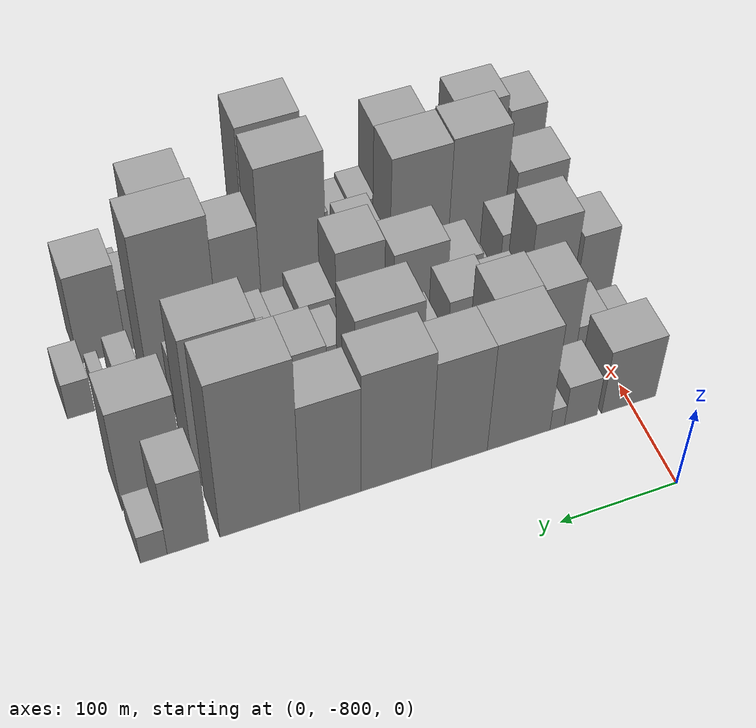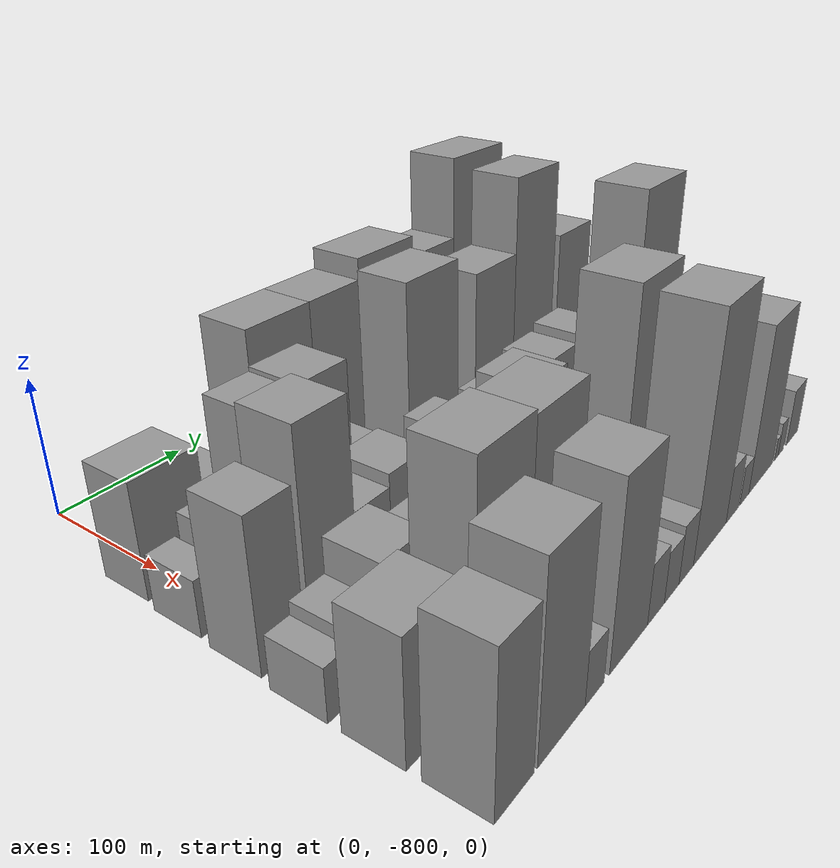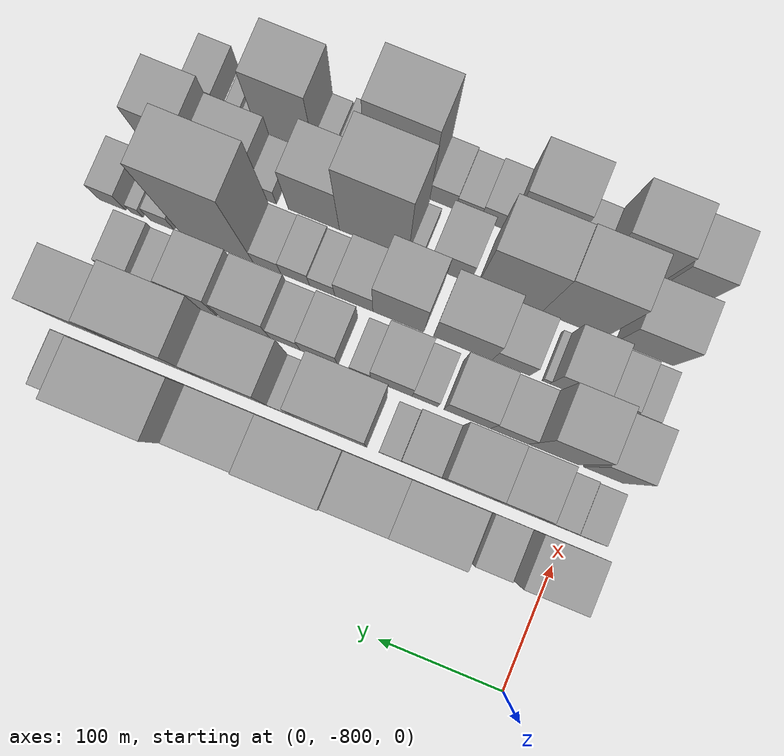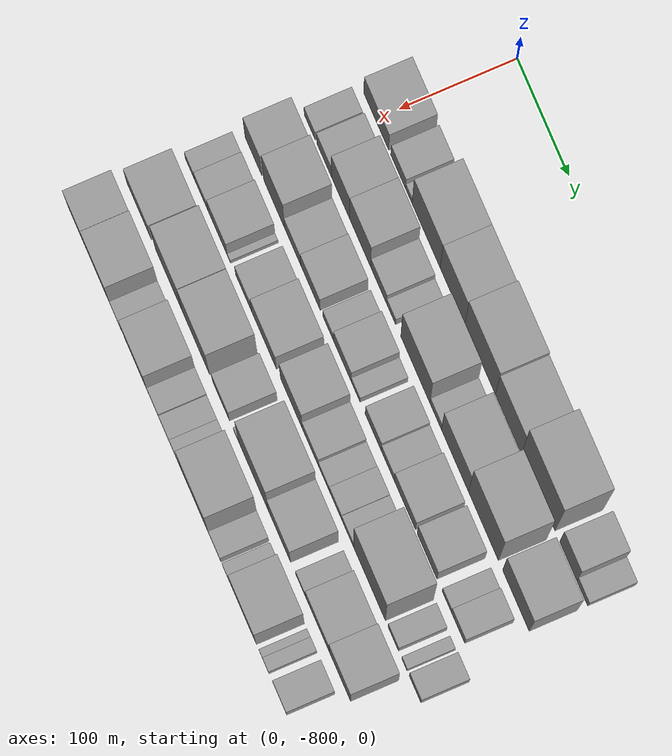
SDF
<sdf version="1.6">
 <world name="default">
  <model name="building_1">
   <static>1</static>
   <pose>100.0000 -797.8358 0 0.000000 0.000000 0.000000</pose>
   <link name="link">
    <pose>0 0 40.50 0 0 0</pose>
    <collision name="collision"><geometry><box><size>40.0000 48.3283 81.0000</size></box></geometry></collision>
    <visual name="visual">
     <cast_shadows>0</cast_shadows>
     <geometry><box><size>40.0000 48.3283 81.0000</size></box></geometry>
     <material>
      <script>
       <uri>model://grey_wall/materials/scripts</uri>
       <uri>model://grey_wall/materials/textures</uri>
       <name>vrc/grey_wall</name>
      </script>
     </material>
    </visual>
   </link>
  </model>
  <model name="building_2">
   <static>1</static>
   <pose>100.0000 -755.2595 0 0.000000 0.000000 0.000000</pose>
   <link name="link">
    <pose>0 0 25.50 0 0 0</pose>
    <collision name="collision"><geometry><box><size>40.0000 28.8243 51.0000</size></box></geometry></collision>
    <visual name="visual">
     <cast_shadows>0</cast_shadows>
     <geometry><box><size>40.0000 28.8243 51.0000</size></box></geometry>
     <material>
      <script>
       <uri>model://grey_wall/materials/scripts</uri>
       <uri>model://grey_wall/materials/textures</uri>
       <name>vrc/grey_wall</name>
      </script>
     </material>
    </visual>
   </link>
  </model>
  <model name="building_3">
   <static>1</static>
   <pose>100.0000 -734.4931 0 0.000000 0.000000 0.000000</pose>
   <link name="link">
    <pose>0 0 13.50 0 0 0</pose>
    <collision name="collision"><geometry><box><size>40.0000 12.7086 27.0000</size></box></geometry></collision>
    <visual name="visual">
     <cast_shadows>0</cast_shadows>
     <geometry><box><size>40.0000 12.7086 27.0000</size></box></geometry>
     <material>
      <script>
       <uri>model://grey_wall/materials/scripts</uri>
       <uri>model://grey_wall/materials/textures</uri>
       <name>vrc/grey_wall</name>
      </script>
     </material>
    </visual>
   </link>
  </model>
  <model name="building_4">
   <static>1</static>
   <pose>100.0000 -700.9512 0 0.000000 0.000000 0.000000</pose>
   <link name="link">
    <pose>0 0 69.00 0 0 0</pose>
    <collision name="collision"><geometry><box><size>40.0000 54.3752 138.0000</size></box></geometry></collision>
    <visual name="visual">
     <cast_shadows>0</cast_shadows>
     <geometry><box><size>40.0000 54.3752 138.0000</size></box></geometry>
     <material>
      <script>
       <uri>model://grey_wall/materials/scripts</uri>
       <uri>model://grey_wall/materials/textures</uri>
       <name>vrc/grey_wall</name>
      </script>
     </material>
    </visual>
   </link>
  </model>
  <model name="building_5">
   <static>1</static>
   <pose>100.0000 -649.9004 0 0.000000 0.000000 0.000000</pose>
   <link name="link">
    <pose>0 0 69.00 0 0 0</pose>
    <collision name="collision"><geometry><box><size>40.0000 47.7264 138.0000</size></box></geometry></collision>
    <visual name="visual">
     <cast_shadows>0</cast_shadows>
     <geometry><box><size>40.0000 47.7264 138.0000</size></box></geometry>
     <material>
      <script>
       <uri>model://grey_wall/materials/scripts</uri>
       <uri>model://grey_wall/materials/textures</uri>
       <name>vrc/grey_wall</name>
      </script>
     </material>
    </visual>
   </link>
  </model>
  <model name="building_6">
   <static>1</static>
   <pose>100.0000 -596.5173 0 0.000000 0.000000 0.000000</pose>
   <link name="link">
    <pose>0 0 76.50 0 0 0</pose>
    <collision name="collision"><geometry><box><size>40.0000 59.0398 153.0000</size></box></geometry></collision>
    <visual name="visual">
     <cast_shadows>0</cast_shadows>
     <geometry><box><size>40.0000 59.0398 153.0000</size></box></geometry>
     <material>
      <script>
       <uri>model://grey_wall/materials/scripts</uri>
       <uri>model://grey_wall/materials/textures</uri>
       <name>vrc/grey_wall</name>
      </script>
     </material>
    </visual>
   </link>
  </model>
  <model name="building_7">
   <static>1</static>
   <pose>100.0000 -541.8641 0 0.000000 0.000000 0.000000</pose>
   <link name="link">
    <pose>0 0 69.00 0 0 0</pose>
    <collision name="collision"><geometry><box><size>40.0000 50.2668 138.0000</size></box></geometry></collision>
    <visual name="visual">
     <cast_shadows>0</cast_shadows>
     <geometry><box><size>40.0000 50.2668 138.0000</size></box></geometry>
     <material>
      <script>
       <uri>model://grey_wall/materials/scripts</uri>
       <uri>model://grey_wall/materials/textures</uri>
       <name>vrc/grey_wall</name>
      </script>
     </material>
    </visual>
   </link>
  </model>
  <model name="building_8">
   <static>1</static>
   <pose>100.0000 -484.4871 0 0.000000 0.000000 0.000000</pose>
   <link name="link">
    <pose>0 0 99.00 0 0 0</pose>
    <collision name="collision"><geometry><box><size>40.0000 64.4871 198.0000</size></box></geometry></collision>
    <visual name="visual">
     <cast_shadows>0</cast_shadows>
     <geometry><box><size>40.0000 64.4871 198.0000</size></box></geometry>
     <material>
      <script>
       <uri>model://grey_wall/materials/scripts</uri>
       <uri>model://grey_wall/materials/textures</uri>
       <name>vrc/grey_wall</name>
      </script>
     </material>
    </visual>
   </link>
  </model>
  <model name="building_9">
   <static>1</static>
   <pose>100.0000 -426.8253 0 0.000000 0.000000 0.000000</pose>
   <link name="link">
    <pose>0 0 49.50 0 0 0</pose>
    <collision name="collision"><geometry><box><size>40.0000 32.8365 99.0000</size></box></geometry></collision>
    <visual name="visual">
     <cast_shadows>0</cast_shadows>
     <geometry><box><size>40.0000 32.8365 99.0000</size></box></geometry>
     <material>
      <script>
       <uri>model://grey_wall/materials/scripts</uri>
       <uri>model://grey_wall/materials/textures</uri>
       <name>vrc/grey_wall</name>
      </script>
     </material>
    </visual>
   </link>
  </model>
  <model name="building_10">
   <static>1</static>
   <pose>100.0000 -399.8568 0 0.000000 0.000000 0.000000</pose>
   <link name="link">
    <pose>0 0 18.00 0 0 0</pose>
    <collision name="collision"><geometry><box><size>40.0000 21.1007 36.0000</size></box></geometry></collision>
    <visual name="visual">
     <cast_shadows>0</cast_shadows>
     <geometry><box><size>40.0000 21.1007 36.0000</size></box></geometry>
     <material>
      <script>
       <uri>model://grey_wall/materials/scripts</uri>
       <uri>model://grey_wall/materials/textures</uri>
       <name>vrc/grey_wall</name>
      </script>
     </material>
    </visual>
   </link>
  </model>
  <model name="building_44">
   <static>1</static>
   <pose>149.0000 -814.3476 0 0.000000 0.000000 0.000000</pose>
   <link name="link">
    <pose>0 0 19.50 0 0 0</pose>
    <collision name="collision"><geometry><box><size>40.0000 21.3049 39.0000</size></box></geometry></collision>
    <visual name="visual">
     <cast_shadows>0</cast_shadows>
     <geometry><box><size>40.0000 21.3049 39.0000</size></box></geometry>
     <material>
      <script>
       <uri>model://grey_wall/materials/scripts</uri>
       <uri>model://grey_wall/materials/textures</uri>
       <name>vrc/grey_wall</name>
      </script>
     </material>
    </visual>
   </link>
  </model>
  <model name="building_45">
   <static>1</static>
   <pose>149.0000 -786.1630 0 0.000000 0.000000 0.000000</pose>
   <link name="link">
    <pose>0 0 27.00 0 0 0</pose>
    <collision name="collision"><geometry><box><size>40.0000 29.0642 54.0000</size></box></geometry></collision>
    <visual name="visual">
     <cast_shadows>0</cast_shadows>
     <geometry><box><size>40.0000 29.0642 54.0000</size></box></geometry>
     <material>
      <script>
       <uri>model://grey_wall/materials/scripts</uri>
       <uri>model://grey_wall/materials/textures</uri>
       <name>vrc/grey_wall</name>
      </script>
     </material>
    </visual>
   </link>
  </model>
  <model name="building_46">
   <static>1</static>
   <pose>149.0000 -753.9838 0 0.000000 0.000000 0.000000</pose>
   <link name="link">
    <pose>0 0 58.50 0 0 0</pose>
    <collision name="collision"><geometry><box><size>40.0000 35.2943 117.0000</size></box></geometry></collision>
    <visual name="visual">
     <cast_shadows>0</cast_shadows>
     <geometry><box><size>40.0000 35.2943 117.0000</size></box></geometry>
     <material>
      <script>
       <uri>model://grey_wall/materials/scripts</uri>
       <uri>model://grey_wall/materials/textures</uri>
       <name>vrc/grey_wall</name>
      </script>
     </material>
    </visual>
   </link>
  </model>
  <model name="building_47">
   <static>1</static>
   <pose>149.0000 -715.8623 0 0.000000 0.000000 0.000000</pose>
   <link name="link">
    <pose>0 0 60.00 0 0 0</pose>
    <collision name="collision"><geometry><box><size>40.0000 40.9487 120.0000</size></box></geometry></collision>
    <visual name="visual">
     <cast_shadows>0</cast_shadows>
     <geometry><box><size>40.0000 40.9487 120.0000</size></box></geometry>
     <material>
      <script>
       <uri>model://grey_wall/materials/scripts</uri>
       <uri>model://grey_wall/materials/textures</uri>
       <name>vrc/grey_wall</name>
      </script>
     </material>
    </visual>
   </link>
  </model>
  <model name="building_48">
   <static>1</static>
   <pose>149.0000 -679.9617 0 0.000000 0.000000 0.000000</pose>
   <link name="link">
    <pose>0 0 27.00 0 0 0</pose>
    <collision name="collision"><geometry><box><size>40.0000 30.8525 54.0000</size></box></geometry></collision>
    <visual name="visual">
     <cast_shadows>0</cast_shadows>
     <geometry><box><size>40.0000 30.8525 54.0000</size></box></geometry>
     <material>
      <script>
       <uri>model://grey_wall/materials/scripts</uri>
       <uri>model://grey_wall/materials/textures</uri>
       <name>vrc/grey_wall</name>
      </script>
     </material>
    </visual>
   </link>
  </model>
  <model name="building_49">
   <static>1</static>
   <pose>149.0000 -655.8019 0 0.000000 0.000000 0.000000</pose>
   <link name="link">
    <pose>0 0 16.50 0 0 0</pose>
    <collision name="collision"><geometry><box><size>40.0000 17.4672 33.0000</size></box></geometry></collision>
    <visual name="visual">
     <cast_shadows>0</cast_shadows>
     <geometry><box><size>40.0000 17.4672 33.0000</size></box></geometry>
     <material>
      <script>
       <uri>model://grey_wall/materials/scripts</uri>
       <uri>model://grey_wall/materials/textures</uri>
       <name>vrc/grey_wall</name>
      </script>
     </material>
    </visual>
   </link>
  </model>
  <model name="building_50">
   <static>1</static>
   <pose>149.0000 -608.8811 0 0.000000 0.000000 0.000000</pose>
   <link name="link">
    <pose>0 0 75.00 0 0 0</pose>
    <collision name="collision"><geometry><box><size>40.0000 56.3745 150.0000</size></box></geometry></collision>
    <visual name="visual">
     <cast_shadows>0</cast_shadows>
     <geometry><box><size>40.0000 56.3745 150.0000</size></box></geometry>
     <material>
      <script>
       <uri>model://grey_wall/materials/scripts</uri>
       <uri>model://grey_wall/materials/textures</uri>
       <name>vrc/grey_wall</name>
      </script>
     </material>
    </visual>
   </link>
  </model>
  <model name="building_51">
   <static>1</static>
   <pose>149.0000 -569.5120 0 0.000000 0.000000 0.000000</pose>
   <link name="link">
    <pose>0 0 19.50 0 0 0</pose>
    <collision name="collision"><geometry><box><size>40.0000 22.3636 39.0000</size></box></geometry></collision>
    <visual name="visual">
     <cast_shadows>0</cast_shadows>
     <geometry><box><size>40.0000 22.3636 39.0000</size></box></geometry>
     <material>
      <script>
       <uri>model://grey_wall/materials/scripts</uri>
       <uri>model://grey_wall/materials/textures</uri>
       <name>vrc/grey_wall</name>
      </script>
     </material>
    </visual>
   </link>
  </model>
  <model name="building_52">
   <static>1</static>
   <pose>149.0000 -532.1994 0 0.000000 0.000000 0.000000</pose>
   <link name="link">
    <pose>0 0 66.00 0 0 0</pose>
    <collision name="collision"><geometry><box><size>40.0000 52.2616 132.0000</size></box></geometry></collision>
    <visual name="visual">
     <cast_shadows>0</cast_shadows>
     <geometry><box><size>40.0000 52.2616 132.0000</size></box></geometry>
     <material>
      <script>
       <uri>model://grey_wall/materials/scripts</uri>
       <uri>model://grey_wall/materials/textures</uri>
       <name>vrc/grey_wall</name>
      </script>
     </material>
    </visual>
   </link>
  </model>
  <model name="building_53">
   <static>1</static>
   <pose>149.0000 -477.2909 0 0.000000 0.000000 0.000000</pose>
   <link name="link">
    <pose>0 0 94.50 0 0 0</pose>
    <collision name="collision"><geometry><box><size>40.0000 57.5554 189.0000</size></box></geometry></collision>
    <visual name="visual">
     <cast_shadows>0</cast_shadows>
     <geometry><box><size>40.0000 57.5554 189.0000</size></box></geometry>
     <material>
      <script>
       <uri>model://grey_wall/materials/scripts</uri>
       <uri>model://grey_wall/materials/textures</uri>
       <name>vrc/grey_wall</name>
      </script>
     </material>
    </visual>
   </link>
  </model>
  <model name="building_54">
   <static>1</static>
   <pose>149.0000 -414.9162 0 0.000000 0.000000 0.000000</pose>
   <link name="link">
    <pose>0 0 64.50 0 0 0</pose>
    <collision name="collision"><geometry><box><size>40.0000 51.1941 129.0000</size></box></geometry></collision>
    <visual name="visual">
     <cast_shadows>0</cast_shadows>
     <geometry><box><size>40.0000 51.1941 129.0000</size></box></geometry>
     <material>
      <script>
       <uri>model://grey_wall/materials/scripts</uri>
       <uri>model://grey_wall/materials/textures</uri>
       <name>vrc/grey_wall</name>
      </script>
     </material>
    </visual>
   </link>
  </model>
  <model name="building_90">
   <static>1</static>
   <pose>198.0000 -810.6737 0 0.000000 0.000000 0.000000</pose>
   <link name="link">
    <pose>0 0 51.00 0 0 0</pose>
    <collision name="collision"><geometry><box><size>40.0000 32.6526 102.0000</size></box></geometry></collision>
    <visual name="visual">
     <cast_shadows>0</cast_shadows>
     <geometry><box><size>40.0000 32.6526 102.0000</size></box></geometry>
     <material>
      <script>
       <uri>model://grey_wall/materials/scripts</uri>
       <uri>model://grey_wall/materials/textures</uri>
       <name>vrc/grey_wall</name>
      </script>
     </material>
    </visual>
   </link>
  </model>
  <model name="building_91">
   <static>1</static>
   <pose>198.0000 -769.9344 0 0.000000 0.000000 0.000000</pose>
   <link name="link">
    <pose>0 0 67.50 0 0 0</pose>
    <collision name="collision"><geometry><box><size>40.0000 40.8260 135.0000</size></box></geometry></collision>
    <visual name="visual">
     <cast_shadows>0</cast_shadows>
     <geometry><box><size>40.0000 40.8260 135.0000</size></box></geometry>
     <material>
      <script>
       <uri>model://grey_wall/materials/scripts</uri>
       <uri>model://grey_wall/materials/textures</uri>
       <name>vrc/grey_wall</name>
      </script>
     </material>
    </visual>
   </link>
  </model>
  <model name="building_92">
   <static>1</static>
   <pose>198.0000 -733.8864 0 0.000000 0.000000 0.000000</pose>
   <link name="link">
    <pose>0 0 30.00 0 0 0</pose>
    <collision name="collision"><geometry><box><size>40.0000 31.2701 60.0000</size></box></geometry></collision>
    <visual name="visual">
     <cast_shadows>0</cast_shadows>
     <geometry><box><size>40.0000 31.2701 60.0000</size></box></geometry>
     <material>
      <script>
       <uri>model://grey_wall/materials/scripts</uri>
       <uri>model://grey_wall/materials/textures</uri>
       <name>vrc/grey_wall</name>
      </script>
     </material>
    </visual>
   </link>
  </model>
  <model name="building_93">
   <static>1</static>
   <pose>198.0000 -699.2500 0 0.000000 0.000000 0.000000</pose>
   <link name="link">
    <pose>0 0 34.50 0 0 0</pose>
    <collision name="collision"><geometry><box><size>40.0000 38.0027 69.0000</size></box></geometry></collision>
    <visual name="visual">
     <cast_shadows>0</cast_shadows>
     <geometry><box><size>40.0000 38.0027 69.0000</size></box></geometry>
     <material>
      <script>
       <uri>model://grey_wall/materials/scripts</uri>
       <uri>model://grey_wall/materials/textures</uri>
       <name>vrc/grey_wall</name>
      </script>
     </material>
    </visual>
   </link>
  </model>
  <model name="building_94">
   <static>1</static>
   <pose>198.0000 -664.7295 0 0.000000 0.000000 0.000000</pose>
   <link name="link">
    <pose>0 0 19.50 0 0 0</pose>
    <collision name="collision"><geometry><box><size>40.0000 21.0384 39.0000</size></box></geometry></collision>
    <visual name="visual">
     <cast_shadows>0</cast_shadows>
     <geometry><box><size>40.0000 21.0384 39.0000</size></box></geometry>
     <material>
      <script>
       <uri>model://grey_wall/materials/scripts</uri>
       <uri>model://grey_wall/materials/textures</uri>
       <name>vrc/grey_wall</name>
      </script>
     </material>
    </visual>
   </link>
  </model>
  <model name="building_95">
   <static>1</static>
   <pose>198.0000 -637.0388 0 0.000000 0.000000 0.000000</pose>
   <link name="link">
    <pose>0 0 33.00 0 0 0</pose>
    <collision name="collision"><geometry><box><size>40.0000 34.3429 66.0000</size></box></geometry></collision>
    <visual name="visual">
     <cast_shadows>0</cast_shadows>
     <geometry><box><size>40.0000 34.3429 66.0000</size></box></geometry>
     <material>
      <script>
       <uri>model://grey_wall/materials/scripts</uri>
       <uri>model://grey_wall/materials/textures</uri>
       <name>vrc/grey_wall</name>
      </script>
     </material>
    </visual>
   </link>
  </model>
  <model name="building_96">
   <static>1</static>
   <pose>198.0000 -611.3137 0 0.000000 0.000000 0.000000</pose>
   <link name="link">
    <pose>0 0 15.00 0 0 0</pose>
    <collision name="collision"><geometry><box><size>40.0000 17.1075 30.0000</size></box></geometry></collision>
    <visual name="visual">
     <cast_shadows>0</cast_shadows>
     <geometry><box><size>40.0000 17.1075 30.0000</size></box></geometry>
     <material>
      <script>
       <uri>model://grey_wall/materials/scripts</uri>
       <uri>model://grey_wall/materials/textures</uri>
       <name>vrc/grey_wall</name>
      </script>
     </material>
    </visual>
   </link>
  </model>
  <model name="building_97">
   <static>1</static>
   <pose>198.0000 -577.2522 0 0.000000 0.000000 0.000000</pose>
   <link name="link">
    <pose>0 0 30.00 0 0 0</pose>
    <collision name="collision"><geometry><box><size>40.0000 31.0154 60.0000</size></box></geometry></collision>
    <visual name="visual">
     <cast_shadows>0</cast_shadows>
     <geometry><box><size>40.0000 31.0154 60.0000</size></box></geometry>
     <material>
      <script>
       <uri>model://grey_wall/materials/scripts</uri>
       <uri>model://grey_wall/materials/textures</uri>
       <name>vrc/grey_wall</name>
      </script>
     </material>
    </visual>
   </link>
  </model>
  <model name="building_98">
   <static>1</static>
   <pose>198.0000 -549.0928 0 0.000000 0.000000 0.000000</pose>
   <link name="link">
    <pose>0 0 22.50 0 0 0</pose>
    <collision name="collision"><geometry><box><size>40.0000 25.3034 45.0000</size></box></geometry></collision>
    <visual name="visual">
     <cast_shadows>0</cast_shadows>
     <geometry><box><size>40.0000 25.3034 45.0000</size></box></geometry>
     <material>
      <script>
       <uri>model://grey_wall/materials/scripts</uri>
       <uri>model://grey_wall/materials/textures</uri>
       <name>vrc/grey_wall</name>
      </script>
     </material>
    </visual>
   </link>
  </model>
  <model name="building_99">
   <static>1</static>
   <pose>198.0000 -515.8874 0 0.000000 0.000000 0.000000</pose>
   <link name="link">
    <pose>0 0 34.50 0 0 0</pose>
    <collision name="collision"><geometry><box><size>40.0000 41.1074 69.0000</size></box></geometry></collision>
    <visual name="visual">
     <cast_shadows>0</cast_shadows>
     <geometry><box><size>40.0000 41.1074 69.0000</size></box></geometry>
     <material>
      <script>
       <uri>model://grey_wall/materials/scripts</uri>
       <uri>model://grey_wall/materials/textures</uri>
       <name>vrc/grey_wall</name>
      </script>
     </material>
    </visual>
   </link>
  </model>
  <model name="building_100">
   <static>1</static>
   <pose>198.0000 -473.2098 0 0.000000 0.000000 0.000000</pose>
   <link name="link">
    <pose>0 0 37.50 0 0 0</pose>
    <collision name="collision"><geometry><box><size>40.0000 38.2478 75.0000</size></box></geometry></collision>
    <visual name="visual">
     <cast_shadows>0</cast_shadows>
     <geometry><box><size>40.0000 38.2478 75.0000</size></box></geometry>
     <material>
      <script>
       <uri>model://grey_wall/materials/scripts</uri>
       <uri>model://grey_wall/materials/textures</uri>
       <name>vrc/grey_wall</name>
      </script>
     </material>
    </visual>
   </link>
  </model>
  <model name="building_101">
   <static>1</static>
   <pose>198.0000 -435.2208 0 0.000000 0.000000 0.000000</pose>
   <link name="link">
    <pose>0 0 16.50 0 0 0</pose>
    <collision name="collision"><geometry><box><size>40.0000 17.7302 33.0000</size></box></geometry></collision>
    <visual name="visual">
     <cast_shadows>0</cast_shadows>
     <geometry><box><size>40.0000 17.7302 33.0000</size></box></geometry>
     <material>
      <script>
       <uri>model://grey_wall/materials/scripts</uri>
       <uri>model://grey_wall/materials/textures</uri>
       <name>vrc/grey_wall</name>
      </script>
     </material>
    </visual>
   </link>
  </model>
  <model name="building_102">
   <static>1</static>
   <pose>198.0000 -413.3399 0 0.000000 0.000000 0.000000</pose>
   <link name="link">
    <pose>0 0 24.00 0 0 0</pose>
    <collision name="collision"><geometry><box><size>40.0000 26.0318 48.0000</size></box></geometry></collision>
    <visual name="visual">
     <cast_shadows>0</cast_shadows>
     <geometry><box><size>40.0000 26.0318 48.0000</size></box></geometry>
     <material>
      <script>
       <uri>model://grey_wall/materials/scripts</uri>
       <uri>model://grey_wall/materials/textures</uri>
       <name>vrc/grey_wall</name>
      </script>
     </material>
    </visual>
   </link>
  </model>
  <model name="building_140">
   <static>1</static>
   <pose>247.0000 -820.7951 0 0.000000 0.000000 0.000000</pose>
   <link name="link">
    <pose>0 0 18.00 0 0 0</pose>
    <collision name="collision"><geometry><box><size>40.0000 18.4097 36.0000</size></box></geometry></collision>
    <visual name="visual">
     <cast_shadows>0</cast_shadows>
     <geometry><box><size>40.0000 18.4097 36.0000</size></box></geometry>
     <material>
      <script>
       <uri>model://grey_wall/materials/scripts</uri>
       <uri>model://grey_wall/materials/textures</uri>
       <name>vrc/grey_wall</name>
      </script>
     </material>
    </visual>
   </link>
  </model>
  <model name="building_141">
   <static>1</static>
   <pose>247.0000 -798.0958 0 0.000000 0.000000 0.000000</pose>
   <link name="link">
    <pose>0 0 22.50 0 0 0</pose>
    <collision name="collision"><geometry><box><size>40.0000 26.9890 45.0000</size></box></geometry></collision>
    <visual name="visual">
     <cast_shadows>0</cast_shadows>
     <geometry><box><size>40.0000 26.9890 45.0000</size></box></geometry>
     <material>
      <script>
       <uri>model://grey_wall/materials/scripts</uri>
       <uri>model://grey_wall/materials/textures</uri>
       <name>vrc/grey_wall</name>
      </script>
     </material>
    </visual>
   </link>
  </model>
  <model name="building_142">
   <static>1</static>
   <pose>247.0000 -766.0405 0 0.000000 0.000000 0.000000</pose>
   <link name="link">
    <pose>0 0 34.50 0 0 0</pose>
    <collision name="collision"><geometry><box><size>40.0000 37.1214 69.0000</size></box></geometry></collision>
    <visual name="visual">
     <cast_shadows>0</cast_shadows>
     <geometry><box><size>40.0000 37.1214 69.0000</size></box></geometry>
     <material>
      <script>
       <uri>model://grey_wall/materials/scripts</uri>
       <uri>model://grey_wall/materials/textures</uri>
       <name>vrc/grey_wall</name>
      </script>
     </material>
    </visual>
   </link>
  </model>
  <model name="building_143">
   <static>1</static>
   <pose>247.0000 -744.4056 0 0.000000 0.000000 0.000000</pose>
   <link name="link">
    <pose>0 0 7.50 0 0 0</pose>
    <collision name="collision"><geometry><box><size>40.0000 6.1484 15.0000</size></box></geometry></collision>
    <visual name="visual">
     <cast_shadows>0</cast_shadows>
     <geometry><box><size>40.0000 6.1484 15.0000</size></box></geometry>
     <material>
      <script>
       <uri>model://grey_wall/materials/scripts</uri>
       <uri>model://grey_wall/materials/textures</uri>
       <name>vrc/grey_wall</name>
      </script>
     </material>
    </visual>
   </link>
  </model>
  <model name="building_144">
   <static>1</static>
   <pose>247.0000 -715.7449 0 0.000000 0.000000 0.000000</pose>
   <link name="link">
    <pose>0 0 27.00 0 0 0</pose>
    <collision name="collision"><geometry><box><size>40.0000 31.1729 54.0000</size></box></geometry></collision>
    <visual name="visual">
     <cast_shadows>0</cast_shadows>
     <geometry><box><size>40.0000 31.1729 54.0000</size></box></geometry>
     <material>
      <script>
       <uri>model://grey_wall/materials/scripts</uri>
       <uri>model://grey_wall/materials/textures</uri>
       <name>vrc/grey_wall</name>
      </script>
     </material>
    </visual>
   </link>
  </model>
  <model name="building_145">
   <static>1</static>
   <pose>247.0000 -675.9454 0 0.000000 0.000000 0.000000</pose>
   <link name="link">
    <pose>0 0 42.00 0 0 0</pose>
    <collision name="collision"><geometry><box><size>40.0000 48.4261 84.0000</size></box></geometry></collision>
    <visual name="visual">
     <cast_shadows>0</cast_shadows>
     <geometry><box><size>40.0000 48.4261 84.0000</size></box></geometry>
     <material>
      <script>
       <uri>model://grey_wall/materials/scripts</uri>
       <uri>model://grey_wall/materials/textures</uri>
       <name>vrc/grey_wall</name>
      </script>
     </material>
    </visual>
   </link>
  </model>
  <model name="building_146">
   <static>1</static>
   <pose>247.0000 -622.5929 0 0.000000 0.000000 0.000000</pose>
   <link name="link">
    <pose>0 0 54.00 0 0 0</pose>
    <collision name="collision"><geometry><box><size>40.0000 42.2787 108.0000</size></box></geometry></collision>
    <visual name="visual">
     <cast_shadows>0</cast_shadows>
     <geometry><box><size>40.0000 42.2787 108.0000</size></box></geometry>
     <material>
      <script>
       <uri>model://grey_wall/materials/scripts</uri>
       <uri>model://grey_wall/materials/textures</uri>
       <name>vrc/grey_wall</name>
      </script>
     </material>
    </visual>
   </link>
  </model>
  <model name="building_147">
   <static>1</static>
   <pose>247.0000 -585.6990 0 0.000000 0.000000 0.000000</pose>
   <link name="link">
    <pose>0 0 27.00 0 0 0</pose>
    <collision name="collision"><geometry><box><size>40.0000 31.5092 54.0000</size></box></geometry></collision>
    <visual name="visual">
     <cast_shadows>0</cast_shadows>
     <geometry><box><size>40.0000 31.5092 54.0000</size></box></geometry>
     <material>
      <script>
       <uri>model://grey_wall/materials/scripts</uri>
       <uri>model://grey_wall/materials/textures</uri>
       <name>vrc/grey_wall</name>
      </script>
     </material>
    </visual>
   </link>
  </model>
  <model name="building_148">
   <static>1</static>
   <pose>247.0000 -559.4164 0 0.000000 0.000000 0.000000</pose>
   <link name="link">
    <pose>0 0 18.00 0 0 0</pose>
    <collision name="collision"><geometry><box><size>40.0000 21.0559 36.0000</size></box></geometry></collision>
    <visual name="visual">
     <cast_shadows>0</cast_shadows>
     <geometry><box><size>40.0000 21.0559 36.0000</size></box></geometry>
     <material>
      <script>
       <uri>model://grey_wall/materials/scripts</uri>
       <uri>model://grey_wall/materials/textures</uri>
       <name>vrc/grey_wall</name>
      </script>
     </material>
    </visual>
   </link>
  </model>
  <model name="building_149">
   <static>1</static>
   <pose>247.0000 -536.9718 0 0.000000 0.000000 0.000000</pose>
   <link name="link">
    <pose>0 0 21.00 0 0 0</pose>
    <collision name="collision"><geometry><box><size>40.0000 23.8332 42.0000</size></box></geometry></collision>
    <visual name="visual">
     <cast_shadows>0</cast_shadows>
     <geometry><box><size>40.0000 23.8332 42.0000</size></box></geometry>
     <material>
      <script>
       <uri>model://grey_wall/materials/scripts</uri>
       <uri>model://grey_wall/materials/textures</uri>
       <name>vrc/grey_wall</name>
      </script>
     </material>
    </visual>
   </link>
  </model>
  <model name="building_150">
   <static>1</static>
   <pose>247.0000 -513.3599 0 0.000000 0.000000 0.000000</pose>
   <link name="link">
    <pose>0 0 19.50 0 0 0</pose>
    <collision name="collision"><geometry><box><size>40.0000 23.3907 39.0000</size></box></geometry></collision>
    <visual name="visual">
     <cast_shadows>0</cast_shadows>
     <geometry><box><size>40.0000 23.3907 39.0000</size></box></geometry>
     <material>
      <script>
       <uri>model://grey_wall/materials/scripts</uri>
       <uri>model://grey_wall/materials/textures</uri>
       <name>vrc/grey_wall</name>
      </script>
     </material>
    </visual>
   </link>
  </model>
  <model name="building_151">
   <static>1</static>
   <pose>247.0000 -471.0673 0 0.000000 0.000000 0.000000</pose>
   <link name="link">
    <pose>0 0 97.50 0 0 0</pose>
    <collision name="collision"><geometry><box><size>40.0000 61.1944 195.0000</size></box></geometry></collision>
    <visual name="visual">
     <cast_shadows>0</cast_shadows>
     <geometry><box><size>40.0000 61.1944 195.0000</size></box></geometry>
     <material>
      <script>
       <uri>model://grey_wall/materials/scripts</uri>
       <uri>model://grey_wall/materials/textures</uri>
       <name>vrc/grey_wall</name>
      </script>
     </material>
    </visual>
   </link>
  </model>
  <model name="building_152">
   <static>1</static>
   <pose>247.0000 -425.3064 0 0.000000 0.000000 0.000000</pose>
   <link name="link">
    <pose>0 0 19.50 0 0 0</pose>
    <collision name="collision"><geometry><box><size>40.0000 20.3273 39.0000</size></box></geometry></collision>
    <visual name="visual">
     <cast_shadows>0</cast_shadows>
     <geometry><box><size>40.0000 20.3273 39.0000</size></box></geometry>
     <material>
      <script>
       <uri>model://grey_wall/materials/scripts</uri>
       <uri>model://grey_wall/materials/textures</uri>
       <name>vrc/grey_wall</name>
      </script>
     </material>
    </visual>
   </link>
  </model>
  <model name="building_153">
   <static>1</static>
   <pose>247.0000 -403.8311 0 0.000000 0.000000 0.000000</pose>
   <link name="link">
    <pose>0 0 12.00 0 0 0</pose>
    <collision name="collision"><geometry><box><size>40.0000 10.6235 24.0000</size></box></geometry></collision>
    <visual name="visual">
     <cast_shadows>0</cast_shadows>
     <geometry><box><size>40.0000 10.6235 24.0000</size></box></geometry>
     <material>
      <script>
       <uri>model://grey_wall/materials/scripts</uri>
       <uri>model://grey_wall/materials/textures</uri>
       <name>vrc/grey_wall</name>
      </script>
     </material>
    </visual>
   </link>
  </model>
  <model name="building_154">
   <static>1</static>
   <pose>247.0000 -383.2195 0 0.000000 0.000000 0.000000</pose>
   <link name="link">
    <pose>0 0 22.50 0 0 0</pose>
    <collision name="collision"><geometry><box><size>40.0000 22.5996 45.0000</size></box></geometry></collision>
    <visual name="visual">
     <cast_shadows>0</cast_shadows>
     <geometry><box><size>40.0000 22.5996 45.0000</size></box></geometry>
     <material>
      <script>
       <uri>model://grey_wall/materials/scripts</uri>
       <uri>model://grey_wall/materials/textures</uri>
       <name>vrc/grey_wall</name>
      </script>
     </material>
    </visual>
   </link>
  </model>
  <model name="building_192">
   <static>1</static>
   <pose>296.0000 -806.2246 0 0.000000 0.000000 0.000000</pose>
   <link name="link">
    <pose>0 0 40.50 0 0 0</pose>
    <collision name="collision"><geometry><box><size>40.0000 47.5508 81.0000</size></box></geometry></collision>
    <visual name="visual">
     <cast_shadows>0</cast_shadows>
     <geometry><box><size>40.0000 47.5508 81.0000</size></box></geometry>
     <material>
      <script>
       <uri>model://grey_wall/materials/scripts</uri>
       <uri>model://grey_wall/materials/textures</uri>
       <name>vrc/grey_wall</name>
      </script>
     </material>
    </visual>
   </link>
  </model>
  <model name="building_193">
   <static>1</static>
   <pose>296.0000 -747.5512 0 0.000000 0.000000 0.000000</pose>
   <link name="link">
    <pose>0 0 72.00 0 0 0</pose>
    <collision name="collision"><geometry><box><size>40.0000 51.7960 144.0000</size></box></geometry></collision>
    <visual name="visual">
     <cast_shadows>0</cast_shadows>
     <geometry><box><size>40.0000 51.7960 144.0000</size></box></geometry>
     <material>
      <script>
       <uri>model://grey_wall/materials/scripts</uri>
       <uri>model://grey_wall/materials/textures</uri>
       <name>vrc/grey_wall</name>
      </script>
     </material>
    </visual>
   </link>
  </model>
  <model name="building_194">
   <static>1</static>
   <pose>296.0000 -694.8485 0 0.000000 0.000000 0.000000</pose>
   <link name="link">
    <pose>0 0 70.50 0 0 0</pose>
    <collision name="collision"><geometry><box><size>40.0000 53.6096 141.0000</size></box></geometry></collision>
    <visual name="visual">
     <cast_shadows>0</cast_shadows>
     <geometry><box><size>40.0000 53.6096 141.0000</size></box></geometry>
     <material>
      <script>
       <uri>model://grey_wall/materials/scripts</uri>
       <uri>model://grey_wall/materials/textures</uri>
       <name>vrc/grey_wall</name>
      </script>
     </material>
    </visual>
   </link>
  </model>
  <model name="building_195">
   <static>1</static>
   <pose>296.0000 -645.6796 0 0.000000 0.000000 0.000000</pose>
   <link name="link">
    <pose>0 0 31.50 0 0 0</pose>
    <collision name="collision"><geometry><box><size>40.0000 32.7281 63.0000</size></box></geometry></collision>
    <visual name="visual">
     <cast_shadows>0</cast_shadows>
     <geometry><box><size>40.0000 32.7281 63.0000</size></box></geometry>
     <material>
      <script>
       <uri>model://grey_wall/materials/scripts</uri>
       <uri>model://grey_wall/materials/textures</uri>
       <name>vrc/grey_wall</name>
      </script>
     </material>
    </visual>
   </link>
  </model>
  <model name="building_196">
   <static>1</static>
   <pose>296.0000 -615.9681 0 0.000000 0.000000 0.000000</pose>
   <link name="link">
    <pose>0 0 12.00 0 0 0</pose>
    <collision name="collision"><geometry><box><size>40.0000 10.6949 24.0000</size></box></geometry></collision>
    <visual name="visual">
     <cast_shadows>0</cast_shadows>
     <geometry><box><size>40.0000 10.6949 24.0000</size></box></geometry>
     <material>
      <script>
       <uri>model://grey_wall/materials/scripts</uri>
       <uri>model://grey_wall/materials/textures</uri>
       <name>vrc/grey_wall</name>
      </script>
     </material>
    </visual>
   </link>
  </model>
  <model name="building_197">
   <static>1</static>
   <pose>296.0000 -581.9335 0 0.000000 0.000000 0.000000</pose>
   <link name="link">
    <pose>0 0 87.00 0 0 0</pose>
    <collision name="collision"><geometry><box><size>40.0000 57.3744 174.0000</size></box></geometry></collision>
    <visual name="visual">
     <cast_shadows>0</cast_shadows>
     <geometry><box><size>40.0000 57.3744 174.0000</size></box></geometry>
     <material>
      <script>
       <uri>model://grey_wall/materials/scripts</uri>
       <uri>model://grey_wall/materials/textures</uri>
       <name>vrc/grey_wall</name>
      </script>
     </material>
    </visual>
   </link>
  </model>
  <model name="building_198">
   <static>1</static>
   <pose>296.0000 -531.8560 0 0.000000 0.000000 0.000000</pose>
   <link name="link">
    <pose>0 0 54.00 0 0 0</pose>
    <collision name="collision"><geometry><box><size>40.0000 42.7805 108.0000</size></box></geometry></collision>
    <visual name="visual">
     <cast_shadows>0</cast_shadows>
     <geometry><box><size>40.0000 42.7805 108.0000</size></box></geometry>
     <material>
      <script>
       <uri>model://grey_wall/materials/scripts</uri>
       <uri>model://grey_wall/materials/textures</uri>
       <name>vrc/grey_wall</name>
      </script>
     </material>
    </visual>
   </link>
  </model>
  <model name="building_199">
   <static>1</static>
   <pose>296.0000 -490.7041 0 0.000000 0.000000 0.000000</pose>
   <link name="link">
    <pose>0 0 18.00 0 0 0</pose>
    <collision name="collision"><geometry><box><size>40.0000 19.5233 36.0000</size></box></geometry></collision>
    <visual name="visual">
     <cast_shadows>0</cast_shadows>
     <geometry><box><size>40.0000 19.5233 36.0000</size></box></geometry>
     <material>
      <script>
       <uri>model://grey_wall/materials/scripts</uri>
       <uri>model://grey_wall/materials/textures</uri>
       <name>vrc/grey_wall</name>
      </script>
     </material>
    </visual>
   </link>
  </model>
  <model name="building_200">
   <static>1</static>
   <pose>296.0000 -458.0785 0 0.000000 0.000000 0.000000</pose>
   <link name="link">
    <pose>0 0 39.00 0 0 0</pose>
    <collision name="collision"><geometry><box><size>40.0000 45.7278 78.0000</size></box></geometry></collision>
    <visual name="visual">
     <cast_shadows>0</cast_shadows>
     <geometry><box><size>40.0000 45.7278 78.0000</size></box></geometry>
     <material>
      <script>
       <uri>model://grey_wall/materials/scripts</uri>
       <uri>model://grey_wall/materials/textures</uri>
       <name>vrc/grey_wall</name>
      </script>
     </material>
    </visual>
   </link>
  </model>
  <model name="building_201">
   <static>1</static>
   <pose>296.0000 -414.7718 0 0.000000 0.000000 0.000000</pose>
   <link name="link">
    <pose>0 0 55.50 0 0 0</pose>
    <collision name="collision"><geometry><box><size>40.0000 40.8856 111.0000</size></box></geometry></collision>
    <visual name="visual">
     <cast_shadows>0</cast_shadows>
     <geometry><box><size>40.0000 40.8856 111.0000</size></box></geometry>
     <material>
      <script>
       <uri>model://grey_wall/materials/scripts</uri>
       <uri>model://grey_wall/materials/textures</uri>
       <name>vrc/grey_wall</name>
      </script>
     </material>
    </visual>
   </link>
  </model>
  <model name="building_234">
   <static>1</static>
   <pose>345.0000 -813.1342 0 0.000000 0.000000 0.000000</pose>
   <link name="link">
    <pose>0 0 51.00 0 0 0</pose>
    <collision name="collision"><geometry><box><size>40.0000 33.7317 102.0000</size></box></geometry></collision>
    <visual name="visual">
     <cast_shadows>0</cast_shadows>
     <geometry><box><size>40.0000 33.7317 102.0000</size></box></geometry>
     <material>
      <script>
       <uri>model://grey_wall/materials/scripts</uri>
       <uri>model://grey_wall/materials/textures</uri>
       <name>vrc/grey_wall</name>
      </script>
     </material>
    </visual>
   </link>
  </model>
  <model name="building_235">
   <static>1</static>
   <pose>345.0000 -770.0024 0 0.000000 0.000000 0.000000</pose>
   <link name="link">
    <pose>0 0 61.50 0 0 0</pose>
    <collision name="collision"><geometry><box><size>40.0000 46.5319 123.0000</size></box></geometry></collision>
    <visual name="visual">
     <cast_shadows>0</cast_shadows>
     <geometry><box><size>40.0000 46.5319 123.0000</size></box></geometry>
     <material>
      <script>
       <uri>model://grey_wall/materials/scripts</uri>
       <uri>model://grey_wall/materials/textures</uri>
       <name>vrc/grey_wall</name>
      </script>
     </material>
    </visual>
   </link>
  </model>
  <model name="building_236">
   <static>1</static>
   <pose>345.0000 -736.4166 0 0.000000 0.000000 0.000000</pose>
   <link name="link">
    <pose>0 0 18.00 0 0 0</pose>
    <collision name="collision"><geometry><box><size>40.0000 20.6397 36.0000</size></box></geometry></collision>
    <visual name="visual">
     <cast_shadows>0</cast_shadows>
     <geometry><box><size>40.0000 20.6397 36.0000</size></box></geometry>
     <material>
      <script>
       <uri>model://grey_wall/materials/scripts</uri>
       <uri>model://grey_wall/materials/textures</uri>
       <name>vrc/grey_wall</name>
      </script>
     </material>
    </visual>
   </link>
  </model>
  <model name="building_237">
   <static>1</static>
   <pose>345.0000 -696.9354 0 0.000000 0.000000 0.000000</pose>
   <link name="link">
    <pose>0 0 61.50 0 0 0</pose>
    <collision name="collision"><geometry><box><size>40.0000 46.3228 123.0000</size></box></geometry></collision>
    <visual name="visual">
     <cast_shadows>0</cast_shadows>
     <geometry><box><size>40.0000 46.3228 123.0000</size></box></geometry>
     <material>
      <script>
       <uri>model://grey_wall/materials/scripts</uri>
       <uri>model://grey_wall/materials/textures</uri>
       <name>vrc/grey_wall</name>
      </script>
     </material>
    </visual>
   </link>
  </model>
  <model name="building_238">
   <static>1</static>
   <pose>345.0000 -662.4675 0 0.000000 0.000000 0.000000</pose>
   <link name="link">
    <pose>0 0 21.00 0 0 0</pose>
    <collision name="collision"><geometry><box><size>40.0000 22.6129 42.0000</size></box></geometry></collision>
    <visual name="visual">
     <cast_shadows>0</cast_shadows>
     <geometry><box><size>40.0000 22.6129 42.0000</size></box></geometry>
     <material>
      <script>
       <uri>model://grey_wall/materials/scripts</uri>
       <uri>model://grey_wall/materials/textures</uri>
       <name>vrc/grey_wall</name>
      </script>
     </material>
    </visual>
   </link>
  </model>
  <model name="building_239">
   <static>1</static>
   <pose>345.0000 -640.7263 0 0.000000 0.000000 0.000000</pose>
   <link name="link">
    <pose>0 0 18.00 0 0 0</pose>
    <collision name="collision"><geometry><box><size>40.0000 20.8695 36.0000</size></box></geometry></collision>
    <visual name="visual">
     <cast_shadows>0</cast_shadows>
     <geometry><box><size>40.0000 20.8695 36.0000</size></box></geometry>
     <material>
      <script>
       <uri>model://grey_wall/materials/scripts</uri>
       <uri>model://grey_wall/materials/textures</uri>
       <name>vrc/grey_wall</name>
      </script>
     </material>
    </visual>
   </link>
  </model>
  <model name="building_240">
   <static>1</static>
   <pose>345.0000 -619.3502 0 0.000000 0.000000 0.000000</pose>
   <link name="link">
    <pose>0 0 21.00 0 0 0</pose>
    <collision name="collision"><geometry><box><size>40.0000 21.8827 42.0000</size></box></geometry></collision>
    <visual name="visual">
     <cast_shadows>0</cast_shadows>
     <geometry><box><size>40.0000 21.8827 42.0000</size></box></geometry>
     <material>
      <script>
       <uri>model://grey_wall/materials/scripts</uri>
       <uri>model://grey_wall/materials/textures</uri>
       <name>vrc/grey_wall</name>
      </script>
     </material>
    </visual>
   </link>
  </model>
  <model name="building_241">
   <static>1</static>
   <pose>345.0000 -581.3354 0 0.000000 0.000000 0.000000</pose>
   <link name="link">
    <pose>0 0 85.50 0 0 0</pose>
    <collision name="collision"><geometry><box><size>40.0000 54.1468 171.0000</size></box></geometry></collision>
    <visual name="visual">
     <cast_shadows>0</cast_shadows>
     <geometry><box><size>40.0000 54.1468 171.0000</size></box></geometry>
     <material>
      <script>
       <uri>model://grey_wall/materials/scripts</uri>
       <uri>model://grey_wall/materials/textures</uri>
       <name>vrc/grey_wall</name>
      </script>
     </material>
    </visual>
   </link>
  </model>
  <model name="building_242">
   <static>1</static>
   <pose>345.0000 -542.9978 0 0.000000 0.000000 0.000000</pose>
   <link name="link">
    <pose>0 0 21.00 0 0 0</pose>
    <collision name="collision"><geometry><box><size>40.0000 22.5285 42.0000</size></box></geometry></collision>
    <visual name="visual">
     <cast_shadows>0</cast_shadows>
     <geometry><box><size>40.0000 22.5285 42.0000</size></box></geometry>
     <material>
      <script>
       <uri>model://grey_wall/materials/scripts</uri>
       <uri>model://grey_wall/materials/textures</uri>
       <name>vrc/grey_wall</name>
      </script>
     </material>
    </visual>
   </link>
  </model>
  <model name="building_243">
   <static>1</static>
   <pose>345.0000 -520.2400 0 0.000000 0.000000 0.000000</pose>
   <link name="link">
    <pose>0 0 15.00 0 0 0</pose>
    <collision name="collision"><geometry><box><size>40.0000 16.9870 30.0000</size></box></geometry></collision>
    <visual name="visual">
     <cast_shadows>0</cast_shadows>
     <geometry><box><size>40.0000 16.9870 30.0000</size></box></geometry>
     <material>
      <script>
       <uri>model://grey_wall/materials/scripts</uri>
       <uri>model://grey_wall/materials/textures</uri>
       <name>vrc/grey_wall</name>
      </script>
     </material>
    </visual>
   </link>
  </model>
  <model name="building_244">
   <static>1</static>
   <pose>345.0000 -487.3387 0 0.000000 0.000000 0.000000</pose>
   <link name="link">
    <pose>0 0 63.00 0 0 0</pose>
    <collision name="collision"><geometry><box><size>40.0000 48.8156 126.0000</size></box></geometry></collision>
    <visual name="visual">
     <cast_shadows>0</cast_shadows>
     <geometry><box><size>40.0000 48.8156 126.0000</size></box></geometry>
     <material>
      <script>
       <uri>model://grey_wall/materials/scripts</uri>
       <uri>model://grey_wall/materials/textures</uri>
       <name>vrc/grey_wall</name>
      </script>
     </material>
    </visual>
   </link>
  </model>
  <model name="building_245">
   <static>1</static>
   <pose>345.0000 -454.2306 0 0.000000 0.000000 0.000000</pose>
   <link name="link">
    <pose>0 0 9.00 0 0 0</pose>
    <collision name="collision"><geometry><box><size>40.0000 7.4004 18.0000</size></box></geometry></collision>
    <visual name="visual">
     <cast_shadows>0</cast_shadows>
     <geometry><box><size>40.0000 7.4004 18.0000</size></box></geometry>
     <material>
      <script>
       <uri>model://grey_wall/materials/scripts</uri>
       <uri>model://grey_wall/materials/textures</uri>
       <name>vrc/grey_wall</name>
      </script>
     </material>
    </visual>
   </link>
  </model>
  <model name="building_246">
   <static>1</static>
   <pose>345.0000 -444.5282 0 0.000000 0.000000 0.000000</pose>
   <link name="link">
    <pose>0 0 13.50 0 0 0</pose>
    <collision name="collision"><geometry><box><size>40.0000 12.0045 27.0000</size></box></geometry></collision>
    <visual name="visual">
     <cast_shadows>0</cast_shadows>
     <geometry><box><size>40.0000 12.0045 27.0000</size></box></geometry>
     <material>
      <script>
       <uri>model://grey_wall/materials/scripts</uri>
       <uri>model://grey_wall/materials/textures</uri>
       <name>vrc/grey_wall</name>
      </script>
     </material>
    </visual>
   </link>
  </model>
  <model name="building_247">
   <static>1</static>
   <pose>345.0000 -417.3299 0 0.000000 0.000000 0.000000</pose>
   <link name="link">
    <pose>0 0 22.50 0 0 0</pose>
    <collision name="collision"><geometry><box><size>40.0000 26.3920 45.0000</size></box></geometry></collision>
    <visual name="visual">
     <cast_shadows>0</cast_shadows>
     <geometry><box><size>40.0000 26.3920 45.0000</size></box></geometry>
     <material>
      <script>
       <uri>model://grey_wall/materials/scripts</uri>
       <uri>model://grey_wall/materials/textures</uri>
       <name>vrc/grey_wall</name>
      </script>
     </material>
    </visual>
   </link>
  </model>
 </world>
</sdf>
